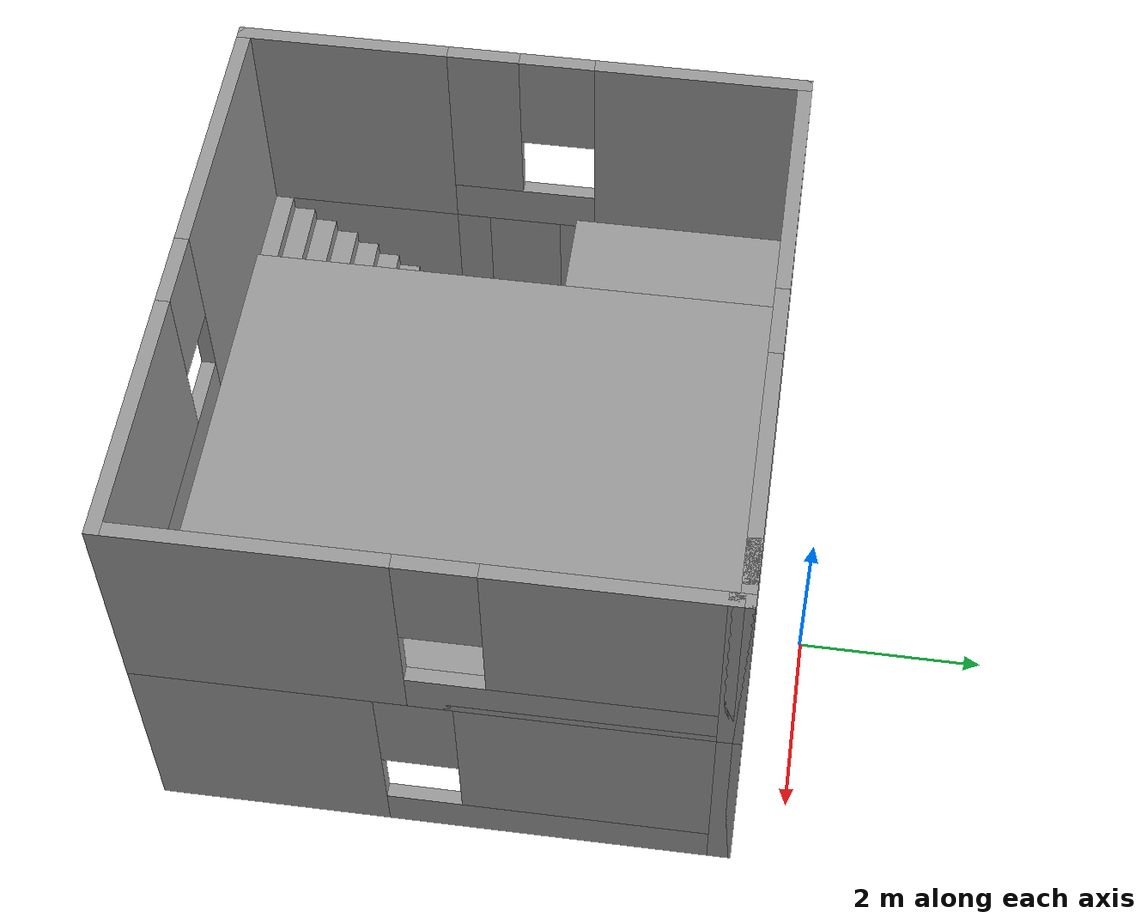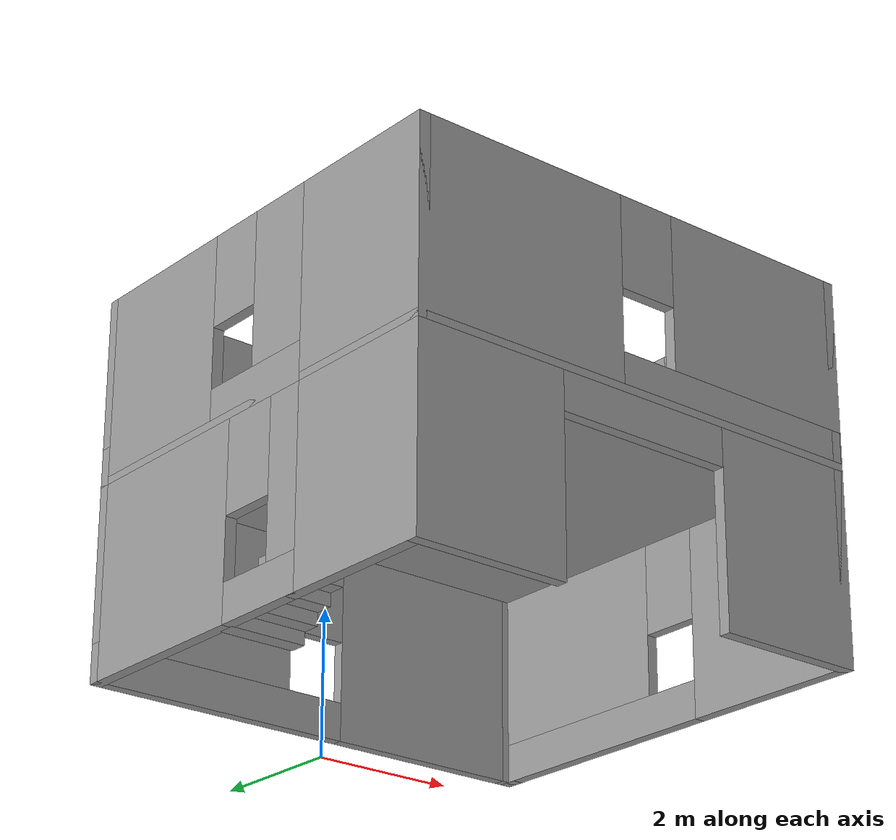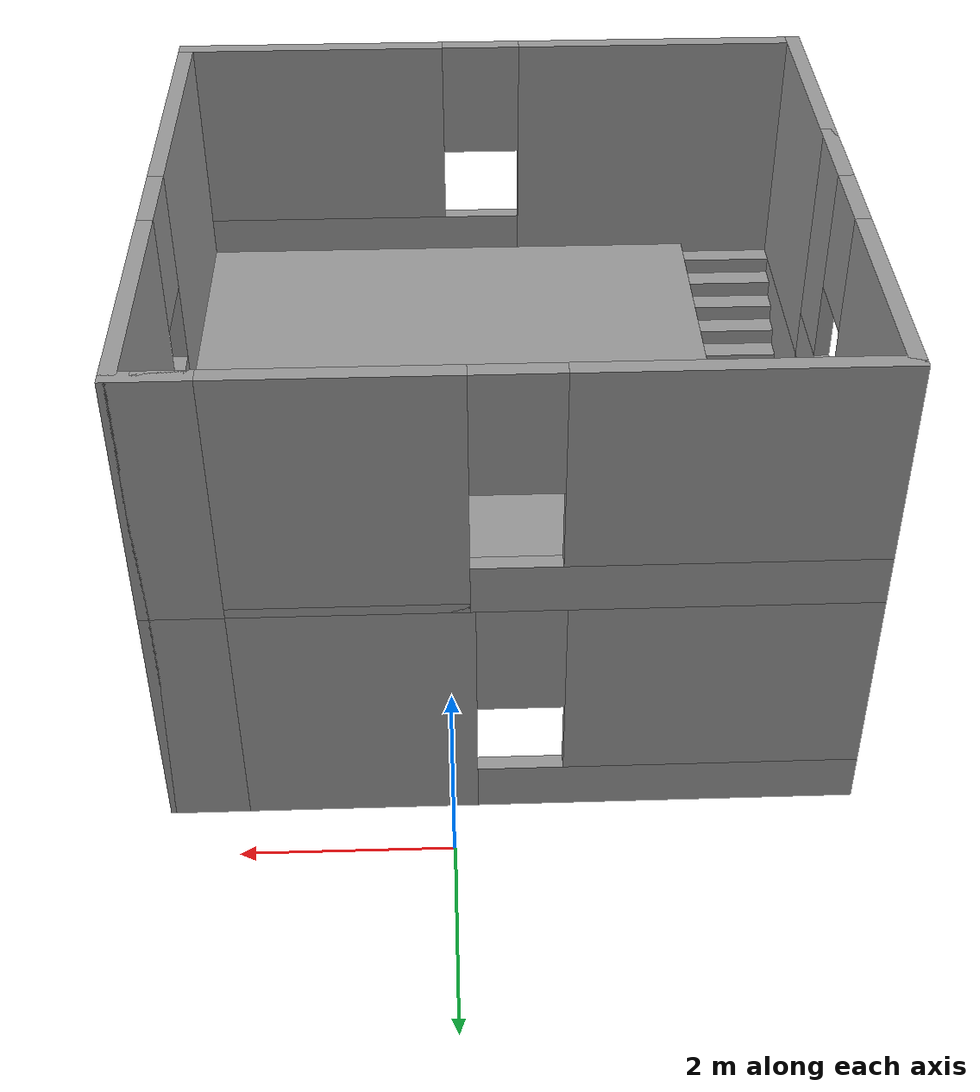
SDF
<?xml version='1.0'?>
<sdf version='1.6'>
  <model name='house6'>
    <pose frame=''>-0.555 -3.575 0 0 -0 0</pose>
    <link name='Floor_0'>
      <pose frame=''>0 0 2.5 0 -0 0</pose>
      <visual name='Floor_0_Visual_0'>
        <pose frame=''>-3.19312 0 0.05 0 -0 0</pose>
        <geometry>
          <box>
            <size>0.113767 6.1 0.1</size>
          </box>
        </geometry>
        <material>
          <script>
            <uri>file://media/materials/scripts/gazebo.material</uri>
            <name>Gazebo/Grey</name>
          </script>
          <ambient>1 1 1 1</ambient>
        </material>
        <meta>
          <layer>1</layer>
        </meta>
      </visual>
      <collision name='Floor_0_Collision_0'>
        <geometry>
          <box>
            <size>0.113767 6.1 0.1</size>
          </box>
        </geometry>
        <pose frame=''>-3.19312 0 0.05 0 -0 0</pose>
      </collision>
      <visual name='Floor_0_Visual_1'>
        <pose frame=''>0.056884 -2.9918 0.05 0 -0 0</pose>
        <geometry>
          <box>
            <size>6.38623 0.116406 0.1</size>
          </box>
        </geometry>
        <material>
          <script>
            <uri>file://media/materials/scripts/gazebo.material</uri>
            <name>Gazebo/Grey</name>
          </script>
          <ambient>1 1 1 1</ambient>
        </material>
        <meta>
          <layer>1</layer>
        </meta>
      </visual>
      <collision name='Floor_0_Collision_1'>
        <geometry>
          <box>
            <size>6.38623 0.116406 0.1</size>
          </box>
        </geometry>
        <pose frame=''>0.056884 -2.9918 0.05 0 -0 0</pose>
      </collision>
      <visual name='Floor_0_Visual_2'>
        <pose frame=''>0.556884 0.058203 0.05 0 -0 0</pose>
        <geometry>
          <box>
            <size>5.38623 5.98359 0.1</size>
          </box>
        </geometry>
        <material>
          <script>
            <uri>file://media/materials/scripts/gazebo.material</uri>
            <name>Gazebo/Grey</name>
          </script>
          <ambient>1 1 1 1</ambient>
        </material>
        <meta>
          <layer>1</layer>
        </meta>
      </visual>
      <collision name='Floor_0_Collision_2'>
        <geometry>
          <box>
            <size>5.38623 5.98359 0.1</size>
          </box>
        </geometry>
        <pose frame=''>0.556884 0.058203 0.05 0 -0 0</pose>
      </collision>
      <visual name='Floor_0_Visual_3'>
        <pose frame=''>-2.63623 1.8082 0.05 0 -0 0</pose>
        <geometry>
          <box>
            <size>1 2.48359 0.1</size>
          </box>
        </geometry>
        <material>
          <script>
            <uri>file://media/materials/scripts/gazebo.material</uri>
            <name>Gazebo/Grey</name>
          </script>
          <ambient>1 1 1 1</ambient>
        </material>
        <meta>
          <layer>1</layer>
        </meta>
      </visual>
      <collision name='Floor_0_Collision_3'>
        <geometry>
          <box>
            <size>1 2.48359 0.1</size>
          </box>
        </geometry>
        <pose frame=''>-2.63623 1.8082 0.05 0 -0 0</pose>
      </collision>
    </link>
    <link name='Stairs_0'>
      <visual name='Stairs_0_Visual_0'>
        <pose frame=''>-2.63623 0.44974 0.083333 0 -0 0</pose>
        <geometry>
          <box>
            <size>1 0.233333 0.166667</size>
          </box>
        </geometry>
        <material>
          <script>
            <uri>file://media/materials/scripts/gazebo.material</uri>
            <name>Gazebo/Grey</name>
          </script>
          <ambient>1 1 1 1</ambient>
        </material>
        <meta>
          <layer>0</layer>
        </meta>
      </visual>
      <collision name='Stairs_0_Collision_0'>
        <geometry>
          <box>
            <size>1 0.233333 0.166667</size>
          </box>
        </geometry>
        <pose frame=''>-2.63623 0.44974 0.083333 0 -0 0</pose>
      </collision>
      <visual name='Stairs_0_Visual_1'>
        <pose frame=''>-2.63623 0.216407 0.25 0 -0 0</pose>
        <geometry>
          <box>
            <size>1 0.233333 0.166667</size>
          </box>
        </geometry>
        <material>
          <script>
            <uri>file://media/materials/scripts/gazebo.material</uri>
            <name>Gazebo/Grey</name>
          </script>
          <ambient>1 1 1 1</ambient>
        </material>
        <meta>
          <layer>0</layer>
        </meta>
      </visual>
      <collision name='Stairs_0_Collision_1'>
        <geometry>
          <box>
            <size>1 0.233333 0.166667</size>
          </box>
        </geometry>
        <pose frame=''>-2.63623 0.216407 0.25 0 -0 0</pose>
      </collision>
      <visual name='Stairs_0_Visual_2'>
        <pose frame=''>-2.63623 -0.016927 0.416667 0 -0 0</pose>
        <geometry>
          <box>
            <size>1 0.233333 0.166667</size>
          </box>
        </geometry>
        <material>
          <script>
            <uri>file://media/materials/scripts/gazebo.material</uri>
            <name>Gazebo/Grey</name>
          </script>
          <ambient>1 1 1 1</ambient>
        </material>
        <meta>
          <layer>0</layer>
        </meta>
      </visual>
      <collision name='Stairs_0_Collision_2'>
        <geometry>
          <box>
            <size>1 0.233333 0.166667</size>
          </box>
        </geometry>
        <pose frame=''>-2.63623 -0.016927 0.416667 0 -0 0</pose>
      </collision>
      <visual name='Stairs_0_Visual_3'>
        <pose frame=''>-2.63623 -0.25026 0.583333 0 -0 0</pose>
        <geometry>
          <box>
            <size>1 0.233333 0.166667</size>
          </box>
        </geometry>
        <material>
          <script>
            <uri>file://media/materials/scripts/gazebo.material</uri>
            <name>Gazebo/Grey</name>
          </script>
          <ambient>1 1 1 1</ambient>
        </material>
        <meta>
          <layer>0</layer>
        </meta>
      </visual>
      <collision name='Stairs_0_Collision_3'>
        <geometry>
          <box>
            <size>1 0.233333 0.166667</size>
          </box>
        </geometry>
        <pose frame=''>-2.63623 -0.25026 0.583333 0 -0 0</pose>
      </collision>
      <visual name='Stairs_0_Visual_4'>
        <pose frame=''>-2.63623 -0.483594 0.75 0 -0 0</pose>
        <geometry>
          <box>
            <size>1 0.233333 0.166667</size>
          </box>
        </geometry>
        <material>
          <script>
            <uri>file://media/materials/scripts/gazebo.material</uri>
            <name>Gazebo/Grey</name>
          </script>
          <ambient>1 1 1 1</ambient>
        </material>
        <meta>
          <layer>0</layer>
        </meta>
      </visual>
      <collision name='Stairs_0_Collision_4'>
        <geometry>
          <box>
            <size>1 0.233333 0.166667</size>
          </box>
        </geometry>
        <pose frame=''>-2.63623 -0.483594 0.75 0 -0 0</pose>
      </collision>
      <visual name='Stairs_0_Visual_5'>
        <pose frame=''>-2.63623 -0.716927 0.916667 0 -0 0</pose>
        <geometry>
          <box>
            <size>1 0.233333 0.166667</size>
          </box>
        </geometry>
        <material>
          <script>
            <uri>file://media/materials/scripts/gazebo.material</uri>
            <name>Gazebo/Grey</name>
          </script>
          <ambient>1 1 1 1</ambient>
        </material>
        <meta>
          <layer>0</layer>
        </meta>
      </visual>
      <collision name='Stairs_0_Collision_5'>
        <geometry>
          <box>
            <size>1 0.233333 0.166667</size>
          </box>
        </geometry>
        <pose frame=''>-2.63623 -0.716927 0.916667 0 -0 0</pose>
      </collision>
      <visual name='Stairs_0_Visual_6'>
        <pose frame=''>-2.63623 -0.95026 1.08333 0 -0 0</pose>
        <geometry>
          <box>
            <size>1 0.233333 0.166667</size>
          </box>
        </geometry>
        <material>
          <script>
            <uri>file://media/materials/scripts/gazebo.material</uri>
            <name>Gazebo/Grey</name>
          </script>
          <ambient>1 1 1 1</ambient>
        </material>
        <meta>
          <layer>0</layer>
        </meta>
      </visual>
      <collision name='Stairs_0_Collision_6'>
        <geometry>
          <box>
            <size>1 0.233333 0.166667</size>
          </box>
        </geometry>
        <pose frame=''>-2.63623 -0.95026 1.08333 0 -0 0</pose>
      </collision>
      <visual name='Stairs_0_Visual_7'>
        <pose frame=''>-2.63623 -1.18359 1.25 0 -0 0</pose>
        <geometry>
          <box>
            <size>1 0.233333 0.166667</size>
          </box>
        </geometry>
        <material>
          <script>
            <uri>file://media/materials/scripts/gazebo.material</uri>
            <name>Gazebo/Grey</name>
          </script>
          <ambient>1 1 1 1</ambient>
        </material>
        <meta>
          <layer>0</layer>
        </meta>
      </visual>
      <collision name='Stairs_0_Collision_7'>
        <geometry>
          <box>
            <size>1 0.233333 0.166667</size>
          </box>
        </geometry>
        <pose frame=''>-2.63623 -1.18359 1.25 0 -0 0</pose>
      </collision>
      <visual name='Stairs_0_Visual_8'>
        <pose frame=''>-2.63623 -1.41693 1.41667 0 -0 0</pose>
        <geometry>
          <box>
            <size>1 0.233333 0.166667</size>
          </box>
        </geometry>
        <material>
          <script>
            <uri>file://media/materials/scripts/gazebo.material</uri>
            <name>Gazebo/Grey</name>
          </script>
          <ambient>1 1 1 1</ambient>
        </material>
        <meta>
          <layer>0</layer>
        </meta>
      </visual>
      <collision name='Stairs_0_Collision_8'>
        <geometry>
          <box>
            <size>1 0.233333 0.166667</size>
          </box>
        </geometry>
        <pose frame=''>-2.63623 -1.41693 1.41667 0 -0 0</pose>
      </collision>
      <visual name='Stairs_0_Visual_9'>
        <pose frame=''>-2.63623 -1.65026 1.58333 0 -0 0</pose>
        <geometry>
          <box>
            <size>1 0.233333 0.166667</size>
          </box>
        </geometry>
        <material>
          <script>
            <uri>file://media/materials/scripts/gazebo.material</uri>
            <name>Gazebo/Grey</name>
          </script>
          <ambient>1 1 1 1</ambient>
        </material>
        <meta>
          <layer>0</layer>
        </meta>
      </visual>
      <collision name='Stairs_0_Collision_9'>
        <geometry>
          <box>
            <size>1 0.233333 0.166667</size>
          </box>
        </geometry>
        <pose frame=''>-2.63623 -1.65026 1.58333 0 -0 0</pose>
      </collision>
      <visual name='Stairs_0_Visual_10'>
        <pose frame=''>-2.63623 -1.88359 1.75 0 -0 0</pose>
        <geometry>
          <box>
            <size>1 0.233333 0.166667</size>
          </box>
        </geometry>
        <material>
          <script>
            <uri>file://media/materials/scripts/gazebo.material</uri>
            <name>Gazebo/Grey</name>
          </script>
          <ambient>1 1 1 1</ambient>
        </material>
        <meta>
          <layer>0</layer>
        </meta>
      </visual>
      <collision name='Stairs_0_Collision_10'>
        <geometry>
          <box>
            <size>1 0.233333 0.166667</size>
          </box>
        </geometry>
        <pose frame=''>-2.63623 -1.88359 1.75 0 -0 0</pose>
      </collision>
      <visual name='Stairs_0_Visual_11'>
        <pose frame=''>-2.63623 -2.11693 1.91667 0 -0 0</pose>
        <geometry>
          <box>
            <size>1 0.233333 0.166667</size>
          </box>
        </geometry>
        <material>
          <script>
            <uri>file://media/materials/scripts/gazebo.material</uri>
            <name>Gazebo/Grey</name>
          </script>
          <ambient>1 1 1 1</ambient>
        </material>
        <meta>
          <layer>0</layer>
        </meta>
      </visual>
      <collision name='Stairs_0_Collision_11'>
        <geometry>
          <box>
            <size>1 0.233333 0.166667</size>
          </box>
        </geometry>
        <pose frame=''>-2.63623 -2.11693 1.91667 0 -0 0</pose>
      </collision>
      <visual name='Stairs_0_Visual_12'>
        <pose frame=''>-2.63623 -2.35026 2.08333 0 -0 0</pose>
        <geometry>
          <box>
            <size>1 0.233333 0.166667</size>
          </box>
        </geometry>
        <material>
          <script>
            <uri>file://media/materials/scripts/gazebo.material</uri>
            <name>Gazebo/Grey</name>
          </script>
          <ambient>1 1 1 1</ambient>
        </material>
        <meta>
          <layer>0</layer>
        </meta>
      </visual>
      <collision name='Stairs_0_Collision_12'>
        <geometry>
          <box>
            <size>1 0.233333 0.166667</size>
          </box>
        </geometry>
        <pose frame=''>-2.63623 -2.35026 2.08333 0 -0 0</pose>
      </collision>
      <visual name='Stairs_0_Visual_13'>
        <pose frame=''>-2.63623 -2.58359 2.25 0 -0 0</pose>
        <geometry>
          <box>
            <size>1 0.233333 0.166667</size>
          </box>
        </geometry>
        <material>
          <script>
            <uri>file://media/materials/scripts/gazebo.material</uri>
            <name>Gazebo/Grey</name>
          </script>
          <ambient>1 1 1 1</ambient>
        </material>
        <meta>
          <layer>0</layer>
        </meta>
      </visual>
      <collision name='Stairs_0_Collision_13'>
        <geometry>
          <box>
            <size>1 0.233333 0.166667</size>
          </box>
        </geometry>
        <pose frame=''>-2.63623 -2.58359 2.25 0 -0 0</pose>
      </collision>
      <visual name='Stairs_0_Visual_14'>
        <pose frame=''>-2.63623 -2.81693 2.41667 0 -0 0</pose>
        <geometry>
          <box>
            <size>1 0.233333 0.166667</size>
          </box>
        </geometry>
        <material>
          <script>
            <uri>file://media/materials/scripts/gazebo.material</uri>
            <name>Gazebo/Grey</name>
          </script>
          <ambient>1 1 1 1</ambient>
        </material>
        <meta>
          <layer>0</layer>
        </meta>
      </visual>
      <collision name='Stairs_0_Collision_14'>
        <geometry>
          <box>
            <size>1 0.233333 0.166667</size>
          </box>
        </geometry>
        <pose frame=''>-2.63623 -2.81693 2.41667 0 -0 0</pose>
      </collision>
    </link>
    <link name='Wall_0'>
      <pose frame=''>-3.175 1.05 0 0 -0 -1.5708</pose>
      <visual name='Wall_0_Visual_0'>
        <pose frame=''>-0.661468 0 1.25 0 -0 0</pose>
        <geometry>
          <box>
            <size>2.67706 0.15 2.5</size>
          </box>
        </geometry>
        <material>
          <script>
            <uri>file://media/materials/scripts/gazebo.material</uri>
            <name>Gazebo/Grey</name>
          </script>
          <ambient>1 1 1 1</ambient>
        </material>
        <meta>
          <layer>0</layer>
        </meta>
      </visual>
      <collision name='Wall_0_Collision_0'>
        <geometry>
          <box>
            <size>2.67706 0.15 2.5</size>
          </box>
        </geometry>
        <pose frame=''>-0.661468 0 1.25 0 -0 0</pose>
      </collision>
      <visual name='Wall_0_Visual_1'>
        <pose frame=''>1.33853 0 0.25 0 -0 0</pose>
        <geometry>
          <box>
            <size>1.32294 0.15 0.5</size>
          </box>
        </geometry>
        <material>
          <script>
            <uri>file://media/materials/scripts/gazebo.material</uri>
            <name>Gazebo/Grey</name>
          </script>
          <ambient>1 1 1 1</ambient>
        </material>
        <meta>
          <layer>0</layer>
        </meta>
      </visual>
      <collision name='Wall_0_Collision_1'>
        <geometry>
          <box>
            <size>1.32294 0.15 0.5</size>
          </box>
        </geometry>
        <pose frame=''>1.33853 0 0.25 0 -0 0</pose>
      </collision>
      <visual name='Wall_0_Visual_2'>
        <pose frame=''>1.73853 0 1.5 0 -0 0</pose>
        <geometry>
          <box>
            <size>0.522937 0.15 2</size>
          </box>
        </geometry>
        <material>
          <script>
            <uri>file://media/materials/scripts/gazebo.material</uri>
            <name>Gazebo/Grey</name>
          </script>
          <ambient>1 1 1 1</ambient>
        </material>
        <meta>
          <layer>0</layer>
        </meta>
      </visual>
      <collision name='Wall_0_Collision_2'>
        <geometry>
          <box>
            <size>0.522937 0.15 2</size>
          </box>
        </geometry>
        <pose frame=''>1.73853 0 1.5 0 -0 0</pose>
      </collision>
      <visual name='Wall_0_Visual_3'>
        <pose frame=''>1.07706 0 1.9 0 -0 0</pose>
        <geometry>
          <box>
            <size>0.8 0.15 1.2</size>
          </box>
        </geometry>
        <material>
          <script>
            <uri>file://media/materials/scripts/gazebo.material</uri>
            <name>Gazebo/Grey</name>
          </script>
          <ambient>1 1 1 1</ambient>
        </material>
        <meta>
          <layer>0</layer>
        </meta>
      </visual>
      <collision name='Wall_0_Collision_3'>
        <geometry>
          <box>
            <size>0.8 0.15 1.2</size>
          </box>
        </geometry>
        <pose frame=''>1.07706 0 1.9 0 -0 0</pose>
      </collision>
    </link>
    <link name='Wall_10'>
      <collision name='Wall_10_Collision'>
        <geometry>
          <box>
            <size>0.15 0.15 2.5</size>
          </box>
        </geometry>
        <pose frame=''>0 0 1.25 0 -0 0</pose>
      </collision>
      <visual name='Wall_10_Visual'>
        <pose frame=''>0 0 1.25 0 -0 0</pose>
        <geometry>
          <box>
            <size>0.15 0.15 2.5</size>
          </box>
        </geometry>
        <material>
          <script>
            <uri>file://media/materials/scripts/gazebo.material</uri>
            <name>Gazebo/Grey</name>
          </script>
          <ambient>1 1 1 1</ambient>
        </material>
        <meta>
          <layer>0</layer>
        </meta>
      </visual>
      <pose frame=''>3.175 2.875 0 0 -0 0</pose>
    </link>
    <link name='Wall_11'>
      <collision name='Wall_11_Collision'>
        <geometry>
          <box>
            <size>0.15 0.15 2.5</size>
          </box>
        </geometry>
        <pose frame=''>0 0 1.25 0 -0 0</pose>
      </collision>
      <visual name='Wall_11_Visual'>
        <pose frame=''>0 0 1.25 0 -0 0</pose>
        <geometry>
          <box>
            <size>0.15 0.15 2.5</size>
          </box>
        </geometry>
        <material>
          <script>
            <uri>file://media/materials/scripts/gazebo.material</uri>
            <name>Gazebo/Grey</name>
          </script>
          <ambient>1 1 1 1</ambient>
        </material>
        <meta>
          <layer>0</layer>
        </meta>
      </visual>
      <pose frame=''>3.175 2.875 0 0 -0 0</pose>
    </link>
    <link name='Wall_12'>
      <collision name='Wall_12_Collision'>
        <geometry>
          <box>
            <size>0.25 0.15 2.5</size>
          </box>
        </geometry>
        <pose frame=''>0 0 1.25 0 -0 0</pose>
      </collision>
      <visual name='Wall_12_Visual'>
        <pose frame=''>0 0 1.25 0 -0 0</pose>
        <geometry>
          <box>
            <size>0.25 0.15 2.5</size>
          </box>
        </geometry>
        <material>
          <script>
            <uri>file://media/materials/scripts/gazebo.material</uri>
            <name>Gazebo/Grey</name>
          </script>
          <ambient>1 1 1 1</ambient>
        </material>
        <meta>
          <layer>0</layer>
        </meta>
      </visual>
      <pose frame=''>3.175 2.925 0 0 -0 1.5708</pose>
    </link>
    <link name='Wall_13'>
      <collision name='Wall_13_Collision'>
        <geometry>
          <box>
            <size>0.75 0.15 2.5</size>
          </box>
        </geometry>
        <pose frame=''>0 0 1.25 0 -0 0</pose>
      </collision>
      <visual name='Wall_13_Visual'>
        <pose frame=''>0 0 1.25 0 -0 0</pose>
        <geometry>
          <box>
            <size>0.75 0.15 2.5</size>
          </box>
        </geometry>
        <material>
          <script>
            <uri>file://media/materials/scripts/gazebo.material</uri>
            <name>Gazebo/Grey</name>
          </script>
          <ambient>1 1 1 1</ambient>
        </material>
        <meta>
          <layer>0</layer>
        </meta>
      </visual>
      <pose frame=''>2.875 2.975 0 0 -0 3.14159</pose>
    </link>
    <link name='Wall_15'>
      <pose frame=''>-3.175 1.05 2.5 0 -0 -1.5708</pose>
      <visual name='Wall_15_Visual_0'>
        <pose frame=''>-0.858079 0 1.25 0 -0 0</pose>
        <geometry>
          <box>
            <size>2.28384 0.15 2.5</size>
          </box>
        </geometry>
        <material>
          <script>
            <uri>file://media/materials/scripts/gazebo.material</uri>
            <name>Gazebo/Grey</name>
          </script>
          <ambient>1 1 1 1</ambient>
        </material>
        <meta>
          <layer>1</layer>
        </meta>
      </visual>
      <collision name='Wall_15_Collision_0'>
        <geometry>
          <box>
            <size>2.28384 0.15 2.5</size>
          </box>
        </geometry>
        <pose frame=''>-0.858079 0 1.25 0 -0 0</pose>
      </collision>
      <visual name='Wall_15_Visual_1'>
        <pose frame=''>1.14192 0 0.25 0 -0 0</pose>
        <geometry>
          <box>
            <size>1.71616 0.15 0.5</size>
          </box>
        </geometry>
        <material>
          <script>
            <uri>file://media/materials/scripts/gazebo.material</uri>
            <name>Gazebo/Grey</name>
          </script>
          <ambient>1 1 1 1</ambient>
        </material>
        <meta>
          <layer>1</layer>
        </meta>
      </visual>
      <collision name='Wall_15_Collision_1'>
        <geometry>
          <box>
            <size>1.71616 0.15 0.5</size>
          </box>
        </geometry>
        <pose frame=''>1.14192 0 0.25 0 -0 0</pose>
      </collision>
      <visual name='Wall_15_Visual_2'>
        <pose frame=''>1.54192 0 1.5 0 -0 0</pose>
        <geometry>
          <box>
            <size>0.916157 0.15 2</size>
          </box>
        </geometry>
        <material>
          <script>
            <uri>file://media/materials/scripts/gazebo.material</uri>
            <name>Gazebo/Grey</name>
          </script>
          <ambient>1 1 1 1</ambient>
        </material>
        <meta>
          <layer>1</layer>
        </meta>
      </visual>
      <collision name='Wall_15_Collision_2'>
        <geometry>
          <box>
            <size>0.916157 0.15 2</size>
          </box>
        </geometry>
        <pose frame=''>1.54192 0 1.5 0 -0 0</pose>
      </collision>
      <visual name='Wall_15_Visual_3'>
        <pose frame=''>0.683843 0 1.9 0 -0 0</pose>
        <geometry>
          <box>
            <size>0.8 0.15 1.2</size>
          </box>
        </geometry>
        <material>
          <script>
            <uri>file://media/materials/scripts/gazebo.material</uri>
            <name>Gazebo/Grey</name>
          </script>
          <ambient>1 1 1 1</ambient>
        </material>
        <meta>
          <layer>1</layer>
        </meta>
      </visual>
      <collision name='Wall_15_Collision_3'>
        <geometry>
          <box>
            <size>0.8 0.15 1.2</size>
          </box>
        </geometry>
        <pose frame=''>0.683843 0 1.9 0 -0 0</pose>
      </collision>
    </link>
    <link name='Wall_16'>
      <pose frame=''>-0.125 2.975 2.5 0 -0 3.14159</pose>
      <visual name='Wall_16_Visual_0'>
        <pose frame=''>-1.81376 0 1.25 0 -0 0</pose>
        <geometry>
          <box>
            <size>2.62247 0.15 2.5</size>
          </box>
        </geometry>
        <material>
          <script>
            <uri>file://media/materials/scripts/gazebo.material</uri>
            <name>Gazebo/Grey</name>
          </script>
          <ambient>1 1 1 1</ambient>
        </material>
        <meta>
          <layer>1</layer>
        </meta>
      </visual>
      <collision name='Wall_16_Collision_0'>
        <geometry>
          <box>
            <size>2.62247 0.15 2.5</size>
          </box>
        </geometry>
        <pose frame=''>-1.81376 0 1.25 0 -0 0</pose>
      </collision>
      <visual name='Wall_16_Visual_1'>
        <pose frame=''>1.31124 0 0.25 0 -0 0</pose>
        <geometry>
          <box>
            <size>3.62753 0.15 0.5</size>
          </box>
        </geometry>
        <material>
          <script>
            <uri>file://media/materials/scripts/gazebo.material</uri>
            <name>Gazebo/Grey</name>
          </script>
          <ambient>1 1 1 1</ambient>
        </material>
        <meta>
          <layer>1</layer>
        </meta>
      </visual>
      <collision name='Wall_16_Collision_1'>
        <geometry>
          <box>
            <size>3.62753 0.15 0.5</size>
          </box>
        </geometry>
        <pose frame=''>1.31124 0 0.25 0 -0 0</pose>
      </collision>
      <visual name='Wall_16_Visual_2'>
        <pose frame=''>1.71124 0 1.5 0 -0 0</pose>
        <geometry>
          <box>
            <size>2.82753 0.15 2</size>
          </box>
        </geometry>
        <material>
          <script>
            <uri>file://media/materials/scripts/gazebo.material</uri>
            <name>Gazebo/Grey</name>
          </script>
          <ambient>1 1 1 1</ambient>
        </material>
        <meta>
          <layer>1</layer>
        </meta>
      </visual>
      <collision name='Wall_16_Collision_2'>
        <geometry>
          <box>
            <size>2.82753 0.15 2</size>
          </box>
        </geometry>
        <pose frame=''>1.71124 0 1.5 0 -0 0</pose>
      </collision>
      <visual name='Wall_16_Visual_3'>
        <pose frame=''>-0.102526 0 1.9 0 -0 0</pose>
        <geometry>
          <box>
            <size>0.8 0.15 1.2</size>
          </box>
        </geometry>
        <material>
          <script>
            <uri>file://media/materials/scripts/gazebo.material</uri>
            <name>Gazebo/Grey</name>
          </script>
          <ambient>1 1 1 1</ambient>
        </material>
        <meta>
          <layer>1</layer>
        </meta>
      </visual>
      <collision name='Wall_16_Collision_3'>
        <geometry>
          <box>
            <size>0.8 0.15 1.2</size>
          </box>
        </geometry>
        <pose frame=''>-0.102526 0 1.9 0 -0 0</pose>
      </collision>
    </link>
    <link name='Wall_17'>
      <collision name='Wall_17_Collision'>
        <geometry>
          <box>
            <size>2.25 0.15 2.5</size>
          </box>
        </geometry>
        <pose frame=''>0 0 1.25 0 -0 0</pose>
      </collision>
      <visual name='Wall_17_Visual'>
        <pose frame=''>0 0 1.25 0 -0 0</pose>
        <geometry>
          <box>
            <size>2.25 0.15 2.5</size>
          </box>
        </geometry>
        <material>
          <script>
            <uri>file://media/materials/scripts/gazebo.material</uri>
            <name>Gazebo/Grey</name>
          </script>
          <ambient>1 1 1 1</ambient>
        </material>
        <meta>
          <layer>1</layer>
        </meta>
      </visual>
      <pose frame=''>-3.175 -1.925 2.5 0 -0 -1.5708</pose>
    </link>
    <link name='Wall_18'>
      <pose frame=''>0 -2.975 2.5 0 -0 0</pose>
      <visual name='Wall_18_Visual_0'>
        <pose frame=''>-1.76684 0 1.25 0 -0 0</pose>
        <geometry>
          <box>
            <size>2.96631 0.15 2.5</size>
          </box>
        </geometry>
        <material>
          <script>
            <uri>file://media/materials/scripts/gazebo.material</uri>
            <name>Gazebo/Grey</name>
          </script>
          <ambient>1 1 1 1</ambient>
        </material>
        <meta>
          <layer>1</layer>
        </meta>
      </visual>
      <collision name='Wall_18_Collision_0'>
        <geometry>
          <box>
            <size>2.96631 0.15 2.5</size>
          </box>
        </geometry>
        <pose frame=''>-1.76684 0 1.25 0 -0 0</pose>
      </collision>
      <visual name='Wall_18_Visual_1'>
        <pose frame=''>1.48316 0 0.25 0 -0 0</pose>
        <geometry>
          <box>
            <size>3.53369 0.15 0.5</size>
          </box>
        </geometry>
        <material>
          <script>
            <uri>file://media/materials/scripts/gazebo.material</uri>
            <name>Gazebo/Grey</name>
          </script>
          <ambient>1 1 1 1</ambient>
        </material>
        <meta>
          <layer>1</layer>
        </meta>
      </visual>
      <collision name='Wall_18_Collision_1'>
        <geometry>
          <box>
            <size>3.53369 0.15 0.5</size>
          </box>
        </geometry>
        <pose frame=''>1.48316 0 0.25 0 -0 0</pose>
      </collision>
      <visual name='Wall_18_Visual_2'>
        <pose frame=''>1.88315 0 1.5 0 -0 0</pose>
        <geometry>
          <box>
            <size>2.73369 0.15 2</size>
          </box>
        </geometry>
        <material>
          <script>
            <uri>file://media/materials/scripts/gazebo.material</uri>
            <name>Gazebo/Grey</name>
          </script>
          <ambient>1 1 1 1</ambient>
        </material>
        <meta>
          <layer>1</layer>
        </meta>
      </visual>
      <collision name='Wall_18_Collision_2'>
        <geometry>
          <box>
            <size>2.73369 0.15 2</size>
          </box>
        </geometry>
        <pose frame=''>1.88315 0 1.5 0 -0 0</pose>
      </collision>
      <visual name='Wall_18_Visual_3'>
        <pose frame=''>0.11631 0 1.9 0 -0 0</pose>
        <geometry>
          <box>
            <size>0.8 0.15 1.2</size>
          </box>
        </geometry>
        <material>
          <script>
            <uri>file://media/materials/scripts/gazebo.material</uri>
            <name>Gazebo/Grey</name>
          </script>
          <ambient>1 1 1 1</ambient>
        </material>
        <meta>
          <layer>1</layer>
        </meta>
      </visual>
      <collision name='Wall_18_Collision_3'>
        <geometry>
          <box>
            <size>0.8 0.15 1.2</size>
          </box>
        </geometry>
        <pose frame=''>0.11631 0 1.9 0 -0 0</pose>
      </collision>
    </link>
    <link name='Wall_19'>
      <pose frame=''>3.175 -0.05 2.5 0 -0 1.5708</pose>
      <visual name='Wall_19_Visual_0'>
        <pose frame=''>-1.59601 0 1.25 0 -0 0</pose>
        <geometry>
          <box>
            <size>2.80798 0.15 2.5</size>
          </box>
        </geometry>
        <material>
          <script>
            <uri>file://media/materials/scripts/gazebo.material</uri>
            <name>Gazebo/Grey</name>
          </script>
          <ambient>1 1 1 1</ambient>
        </material>
        <meta>
          <layer>1</layer>
        </meta>
      </visual>
      <collision name='Wall_19_Collision_0'>
        <geometry>
          <box>
            <size>2.80798 0.15 2.5</size>
          </box>
        </geometry>
        <pose frame=''>-1.59601 0 1.25 0 -0 0</pose>
      </collision>
      <visual name='Wall_19_Visual_1'>
        <pose frame=''>1.40399 0 0.25 0 -0 0</pose>
        <geometry>
          <box>
            <size>3.19202 0.15 0.5</size>
          </box>
        </geometry>
        <material>
          <script>
            <uri>file://media/materials/scripts/gazebo.material</uri>
            <name>Gazebo/Grey</name>
          </script>
          <ambient>1 1 1 1</ambient>
        </material>
        <meta>
          <layer>1</layer>
        </meta>
      </visual>
      <collision name='Wall_19_Collision_1'>
        <geometry>
          <box>
            <size>3.19202 0.15 0.5</size>
          </box>
        </geometry>
        <pose frame=''>1.40399 0 0.25 0 -0 0</pose>
      </collision>
      <visual name='Wall_19_Visual_2'>
        <pose frame=''>1.80399 0 1.5 0 -0 0</pose>
        <geometry>
          <box>
            <size>2.39202 0.15 2</size>
          </box>
        </geometry>
        <material>
          <script>
            <uri>file://media/materials/scripts/gazebo.material</uri>
            <name>Gazebo/Grey</name>
          </script>
          <ambient>1 1 1 1</ambient>
        </material>
        <meta>
          <layer>1</layer>
        </meta>
      </visual>
      <collision name='Wall_19_Collision_2'>
        <geometry>
          <box>
            <size>2.39202 0.15 2</size>
          </box>
        </geometry>
        <pose frame=''>1.80399 0 1.5 0 -0 0</pose>
      </collision>
      <visual name='Wall_19_Visual_3'>
        <pose frame=''>0.207982 0 1.9 0 -0 0</pose>
        <geometry>
          <box>
            <size>0.8 0.15 1.2</size>
          </box>
        </geometry>
        <material>
          <script>
            <uri>file://media/materials/scripts/gazebo.material</uri>
            <name>Gazebo/Grey</name>
          </script>
          <ambient>1 1 1 1</ambient>
        </material>
        <meta>
          <layer>1</layer>
        </meta>
      </visual>
      <collision name='Wall_19_Collision_3'>
        <geometry>
          <box>
            <size>0.8 0.15 1.2</size>
          </box>
        </geometry>
        <pose frame=''>0.207982 0 1.9 0 -0 0</pose>
      </collision>
    </link>
    <link name='Wall_20'>
      <collision name='Wall_20_Collision'>
        <geometry>
          <box>
            <size>0.15 0.15 2.5</size>
          </box>
        </geometry>
        <pose frame=''>0 0 1.25 0 -0 0</pose>
      </collision>
      <visual name='Wall_20_Visual'>
        <pose frame=''>0 0 1.25 0 -0 0</pose>
        <geometry>
          <box>
            <size>0.15 0.15 2.5</size>
          </box>
        </geometry>
        <material>
          <script>
            <uri>file://media/materials/scripts/gazebo.material</uri>
            <name>Gazebo/Grey</name>
          </script>
          <ambient>1 1 1 1</ambient>
        </material>
        <meta>
          <layer>1</layer>
        </meta>
      </visual>
      <pose frame=''>3.175 2.875 2.5 0 -0 0</pose>
    </link>
    <link name='Wall_21'>
      <collision name='Wall_21_Collision'>
        <geometry>
          <box>
            <size>0.15 0.15 2.5</size>
          </box>
        </geometry>
        <pose frame=''>0 0 1.25 0 -0 0</pose>
      </collision>
      <visual name='Wall_21_Visual'>
        <pose frame=''>0 0 1.25 0 -0 0</pose>
        <geometry>
          <box>
            <size>0.15 0.15 2.5</size>
          </box>
        </geometry>
        <material>
          <script>
            <uri>file://media/materials/scripts/gazebo.material</uri>
            <name>Gazebo/Grey</name>
          </script>
          <ambient>1 1 1 1</ambient>
        </material>
        <meta>
          <layer>1</layer>
        </meta>
      </visual>
      <pose frame=''>3.175 2.875 2.5 0 -0 0</pose>
    </link>
    <link name='Wall_22'>
      <collision name='Wall_22_Collision'>
        <geometry>
          <box>
            <size>0.25 0.15 2.5</size>
          </box>
        </geometry>
        <pose frame=''>0 0 1.25 0 -0 0</pose>
      </collision>
      <visual name='Wall_22_Visual'>
        <pose frame=''>0 0 1.25 0 -0 0</pose>
        <geometry>
          <box>
            <size>0.25 0.15 2.5</size>
          </box>
        </geometry>
        <material>
          <script>
            <uri>file://media/materials/scripts/gazebo.material</uri>
            <name>Gazebo/Grey</name>
          </script>
          <ambient>1 1 1 1</ambient>
        </material>
        <meta>
          <layer>1</layer>
        </meta>
      </visual>
      <pose frame=''>3.175 2.925 2.5 0 -0 1.5708</pose>
    </link>
    <link name='Wall_23'>
      <collision name='Wall_23_Collision'>
        <geometry>
          <box>
            <size>0.75 0.15 2.5</size>
          </box>
        </geometry>
        <pose frame=''>0 0 1.25 0 -0 0</pose>
      </collision>
      <visual name='Wall_23_Visual'>
        <pose frame=''>0 0 1.25 0 -0 0</pose>
        <geometry>
          <box>
            <size>0.75 0.15 2.5</size>
          </box>
        </geometry>
        <material>
          <script>
            <uri>file://media/materials/scripts/gazebo.material</uri>
            <name>Gazebo/Grey</name>
          </script>
          <ambient>1 1 1 1</ambient>
        </material>
        <meta>
          <layer>1</layer>
        </meta>
      </visual>
      <pose frame=''>2.875 2.975 2.5 0 -0 3.14159</pose>
    </link>
    <link name='Wall_3'>
      <pose frame=''>-0.125 2.975 0 0 -0 3.14159</pose>
      <visual name='Wall_3_Visual_0'>
        <pose frame=''>-1.79063 0 1.25 0 -0 0</pose>
        <geometry>
          <box>
            <size>2.66873 0.15 2.5</size>
          </box>
        </geometry>
        <material>
          <script>
            <uri>file://media/materials/scripts/gazebo.material</uri>
            <name>Gazebo/Grey</name>
          </script>
          <ambient>1 1 1 1</ambient>
        </material>
        <meta>
          <layer>0</layer>
        </meta>
      </visual>
      <collision name='Wall_3_Collision_0'>
        <geometry>
          <box>
            <size>2.66873 0.15 2.5</size>
          </box>
        </geometry>
        <pose frame=''>-1.79063 0 1.25 0 -0 0</pose>
      </collision>
      <visual name='Wall_3_Visual_1'>
        <pose frame=''>1.33437 0 0.25 0 -0 0</pose>
        <geometry>
          <box>
            <size>3.58127 0.15 0.5</size>
          </box>
        </geometry>
        <material>
          <script>
            <uri>file://media/materials/scripts/gazebo.material</uri>
            <name>Gazebo/Grey</name>
          </script>
          <ambient>1 1 1 1</ambient>
        </material>
        <meta>
          <layer>0</layer>
        </meta>
      </visual>
      <collision name='Wall_3_Collision_1'>
        <geometry>
          <box>
            <size>3.58127 0.15 0.5</size>
          </box>
        </geometry>
        <pose frame=''>1.33437 0 0.25 0 -0 0</pose>
      </collision>
      <visual name='Wall_3_Visual_2'>
        <pose frame=''>1.73437 0 1.5 0 -0 0</pose>
        <geometry>
          <box>
            <size>2.78126 0.15 2</size>
          </box>
        </geometry>
        <material>
          <script>
            <uri>file://media/materials/scripts/gazebo.material</uri>
            <name>Gazebo/Grey</name>
          </script>
          <ambient>1 1 1 1</ambient>
        </material>
        <meta>
          <layer>0</layer>
        </meta>
      </visual>
      <collision name='Wall_3_Collision_2'>
        <geometry>
          <box>
            <size>2.78126 0.15 2</size>
          </box>
        </geometry>
        <pose frame=''>1.73437 0 1.5 0 -0 0</pose>
      </collision>
      <visual name='Wall_3_Visual_3'>
        <pose frame=''>-0.056265 0 1.9 0 -0 0</pose>
        <geometry>
          <box>
            <size>0.8 0.15 1.2</size>
          </box>
        </geometry>
        <material>
          <script>
            <uri>file://media/materials/scripts/gazebo.material</uri>
            <name>Gazebo/Grey</name>
          </script>
          <ambient>1 1 1 1</ambient>
        </material>
        <meta>
          <layer>0</layer>
        </meta>
      </visual>
      <collision name='Wall_3_Collision_3'>
        <geometry>
          <box>
            <size>0.8 0.15 1.2</size>
          </box>
        </geometry>
        <pose frame=''>-0.056265 0 1.9 0 -0 0</pose>
      </collision>
    </link>
    <link name='Wall_5'>
      <collision name='Wall_5_Collision'>
        <geometry>
          <box>
            <size>2.25 0.15 2.5</size>
          </box>
        </geometry>
        <pose frame=''>0 0 1.25 0 -0 0</pose>
      </collision>
      <visual name='Wall_5_Visual'>
        <pose frame=''>0 0 1.25 0 -0 0</pose>
        <geometry>
          <box>
            <size>2.25 0.15 2.5</size>
          </box>
        </geometry>
        <material>
          <script>
            <uri>file://media/materials/scripts/gazebo.material</uri>
            <name>Gazebo/Grey</name>
          </script>
          <ambient>1 1 1 1</ambient>
        </material>
        <meta>
          <layer>0</layer>
        </meta>
      </visual>
      <pose frame=''>-3.175 -1.925 0 0 -0 -1.5708</pose>
    </link>
    <link name='Wall_6'>
      <pose frame=''>0 -2.975 0 0 -0 0</pose>
      <visual name='Wall_6_Visual_0'>
        <pose frame=''>-2.22554 0 1.25 0 -0 0</pose>
        <geometry>
          <box>
            <size>2.04891 0.15 2.5</size>
          </box>
        </geometry>
        <material>
          <script>
            <uri>file://media/materials/scripts/gazebo.material</uri>
            <name>Gazebo/Grey</name>
          </script>
          <ambient>1 1 1 1</ambient>
        </material>
        <meta>
          <layer>0</layer>
        </meta>
      </visual>
      <collision name='Wall_6_Collision_0'>
        <geometry>
          <box>
            <size>2.04891 0.15 2.5</size>
          </box>
        </geometry>
        <pose frame=''>-2.22554 0 1.25 0 -0 0</pose>
      </collision>
      <visual name='Wall_6_Visual_1'>
        <pose frame=''>2.23777 0 1.25 0 -0 0</pose>
        <geometry>
          <box>
            <size>2.02447 0.15 2.5</size>
          </box>
        </geometry>
        <material>
          <script>
            <uri>file://media/materials/scripts/gazebo.material</uri>
            <name>Gazebo/Grey</name>
          </script>
          <ambient>1 1 1 1</ambient>
        </material>
        <meta>
          <layer>0</layer>
        </meta>
      </visual>
      <collision name='Wall_6_Collision_1'>
        <geometry>
          <box>
            <size>2.02447 0.15 2.5</size>
          </box>
        </geometry>
        <pose frame=''>2.23777 0 1.25 0 -0 0</pose>
      </collision>
      <visual name='Wall_6_Visual_2'>
        <pose frame=''>0.012222 0 2.25 0 -0 0</pose>
        <geometry>
          <box>
            <size>2.42662 0.15 0.5</size>
          </box>
        </geometry>
        <material>
          <script>
            <uri>file://media/materials/scripts/gazebo.material</uri>
            <name>Gazebo/Grey</name>
          </script>
          <ambient>1 1 1 1</ambient>
        </material>
        <meta>
          <layer>0</layer>
        </meta>
      </visual>
      <collision name='Wall_6_Collision_2'>
        <geometry>
          <box>
            <size>2.42662 0.15 0.5</size>
          </box>
        </geometry>
        <pose frame=''>0.012222 0 2.25 0 -0 0</pose>
      </collision>
    </link>
    <link name='Wall_7'>
      <pose frame=''>3.175 -0.05 0 0 -0 1.5708</pose>
      <visual name='Wall_7_Visual_0'>
        <pose frame=''>-1.76949 0 1.25 0 -0 0</pose>
        <geometry>
          <box>
            <size>2.46102 0.15 2.5</size>
          </box>
        </geometry>
        <material>
          <script>
            <uri>file://media/materials/scripts/gazebo.material</uri>
            <name>Gazebo/Grey</name>
          </script>
          <ambient>1 1 1 1</ambient>
        </material>
        <meta>
          <layer>0</layer>
        </meta>
      </visual>
      <collision name='Wall_7_Collision_0'>
        <geometry>
          <box>
            <size>2.46102 0.15 2.5</size>
          </box>
        </geometry>
        <pose frame=''>-1.76949 0 1.25 0 -0 0</pose>
      </collision>
      <visual name='Wall_7_Visual_1'>
        <pose frame=''>1.23051 0 0.25 0 -0 0</pose>
        <geometry>
          <box>
            <size>3.53898 0.15 0.5</size>
          </box>
        </geometry>
        <material>
          <script>
            <uri>file://media/materials/scripts/gazebo.material</uri>
            <name>Gazebo/Grey</name>
          </script>
          <ambient>1 1 1 1</ambient>
        </material>
        <meta>
          <layer>0</layer>
        </meta>
      </visual>
      <collision name='Wall_7_Collision_1'>
        <geometry>
          <box>
            <size>3.53898 0.15 0.5</size>
          </box>
        </geometry>
        <pose frame=''>1.23051 0 0.25 0 -0 0</pose>
      </collision>
      <visual name='Wall_7_Visual_2'>
        <pose frame=''>1.63051 0 1.5 0 -0 0</pose>
        <geometry>
          <box>
            <size>2.73898 0.15 2</size>
          </box>
        </geometry>
        <material>
          <script>
            <uri>file://media/materials/scripts/gazebo.material</uri>
            <name>Gazebo/Grey</name>
          </script>
          <ambient>1 1 1 1</ambient>
        </material>
        <meta>
          <layer>0</layer>
        </meta>
      </visual>
      <collision name='Wall_7_Collision_2'>
        <geometry>
          <box>
            <size>2.73898 0.15 2</size>
          </box>
        </geometry>
        <pose frame=''>1.63051 0 1.5 0 -0 0</pose>
      </collision>
      <visual name='Wall_7_Visual_3'>
        <pose frame=''>-0.138978 0 1.9 0 -0 0</pose>
        <geometry>
          <box>
            <size>0.8 0.15 1.2</size>
          </box>
        </geometry>
        <material>
          <script>
            <uri>file://media/materials/scripts/gazebo.material</uri>
            <name>Gazebo/Grey</name>
          </script>
          <ambient>1 1 1 1</ambient>
        </material>
        <meta>
          <layer>0</layer>
        </meta>
      </visual>
      <collision name='Wall_7_Collision_3'>
        <geometry>
          <box>
            <size>0.8 0.15 1.2</size>
          </box>
        </geometry>
        <pose frame=''>-0.138978 0 1.9 0 -0 0</pose>
      </collision>
    </link>
    <static>1</static>
  </model>
</sdf>
